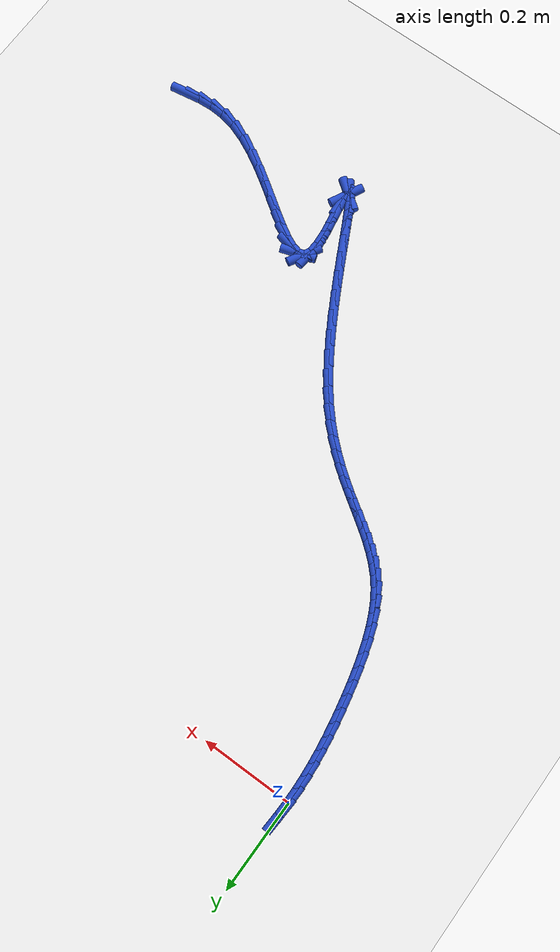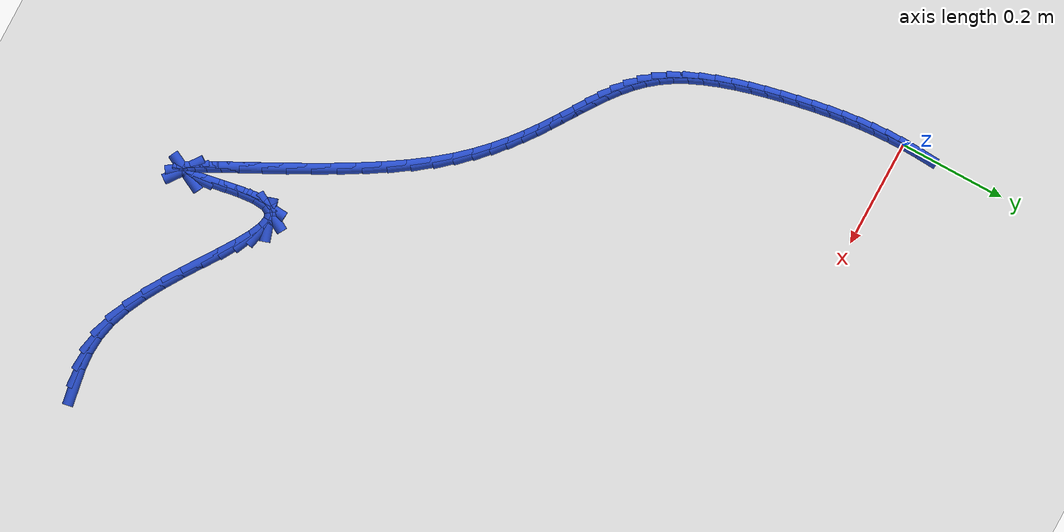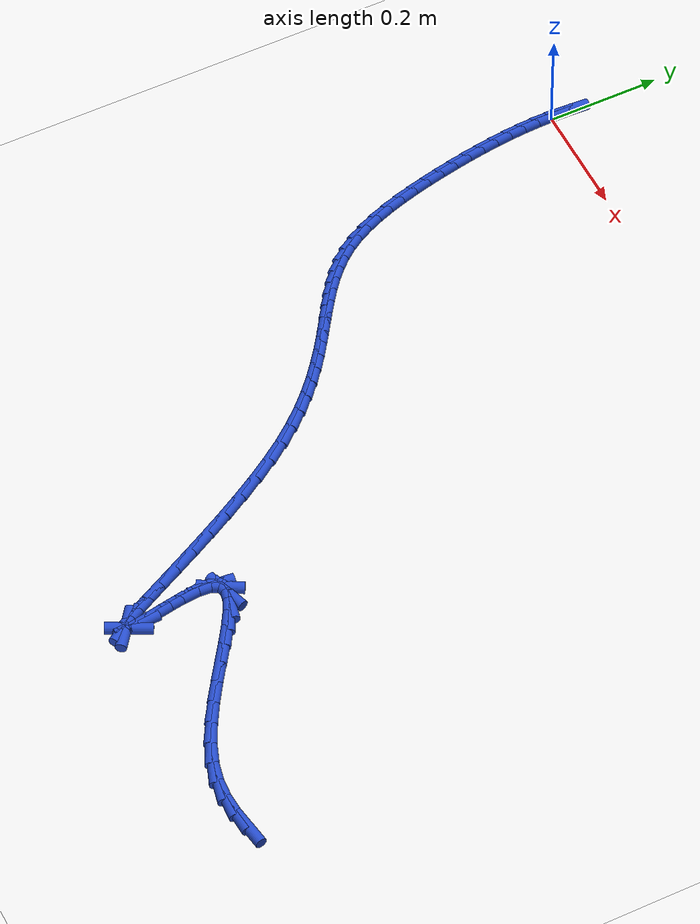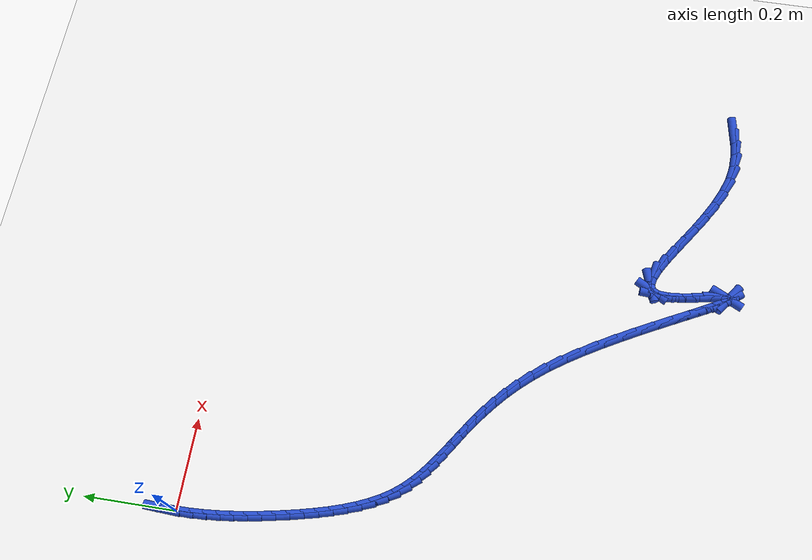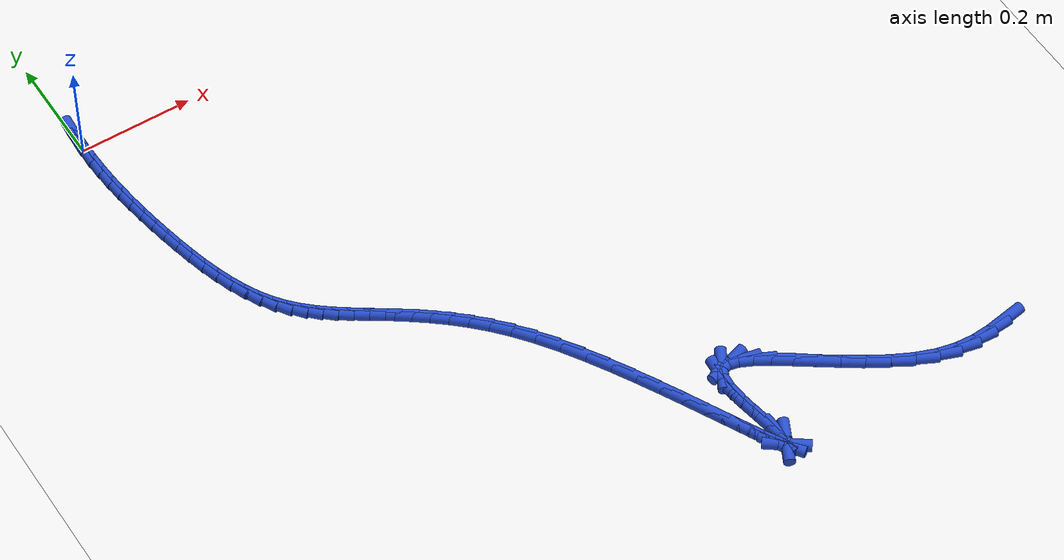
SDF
<sdf version="1.6">
 <world name="default">
  <model name="ground_plane">
   <static>1</static>
   <link name="link">
    <collision name="collision">
     <geometry><plane><normal>0 0 1</normal><size>100 100</size></plane></geometry>
     <surface><friction><ode><mu>100</mu><mu2>50</mu2></ode></friction></surface>
    </collision>
    <visual name="visual">
     <cast_shadows>0</cast_shadows>
     <geometry><plane><normal>0 0 1</normal><size>100 100</size></plane></geometry>
     <material>
      <script><uri>file://media/materials/scripts/gazebo.material</uri><name>Gazebo/WhiteGlow</name></script>
     </material>
    </visual>
   </link>
  </model>
  <model name="line">
   <link name="link_0">
    <pose>-2.6020852139652106e-18 2.7755575615628914e-17 0.01 0 1.57 1.5460825741997606</pose>
    <collision name="collision">
     <geometry><cylinder><radius>0.01</radius><length>0.08</length></cylinder></geometry>
    </collision>
    <visual name="visual">
     <material>
      <script><name>Gazebo/Blue</name><uri>file://media/materials/scripts/gazebo.material</uri></script>
     </material>
     <geometry><cylinder><radius>0.01</radius><length>0.08</length></cylinder></geometry>
    </visual>
   </link>
   <link name="link_1">
    <pose>0.0006957124696851008 0.0281450913307681 0.01 0 1.57 1.5133960565667233</pose>
    <collision name="collision">
     <geometry><cylinder><radius>0.01</radius><length>0.08</length></cylinder></geometry>
    </collision>
    <visual name="visual">
     <material>
      <script><name>Gazebo/Blue</name><uri>file://media/materials/scripts/gazebo.material</uri></script>
     </material>
     <geometry><cylinder><radius>0.01</radius><length>0.08</length></cylinder></geometry>
    </visual>
   </link>
   <link name="link_213">
    <pose>1.079894612910724 -1.1053878803972577 0.01 0 1.57 0.15801777567579595</pose>
    <collision name="collision">
     <geometry><cylinder><radius>0.01</radius><length>0.08</length></cylinder></geometry>
    </collision>
    <visual name="visual">
     <material>
      <script><name>Gazebo/Blue</name><uri>file://media/materials/scripts/gazebo.material</uri></script>
     </material>
     <geometry><cylinder><radius>0.01</radius><length>0.08</length></cylinder></geometry>
    </visual>
   </link>
   <link name="link_214">
    <pose>1.0492796436714982 -1.1102662612585912 0.01 0 1.57 0.059318726436910225</pose>
    <collision name="collision">
     <geometry><cylinder><radius>0.01</radius><length>0.08</length></cylinder></geometry>
    </collision>
    <visual name="visual">
     <material>
      <script><name>Gazebo/Blue</name><uri>file://media/materials/scripts/gazebo.material</uri></script>
     </material>
     <geometry><cylinder><radius>0.01</radius><length>0.08</length></cylinder></geometry>
    </visual>
   </link>
   <link name="link_215">
    <pose>1.0176081334829237 -1.1121471815635164 0.01 0 1.57 -0.06843720812943888</pose>
    <collision name="collision">
     <geometry><cylinder><radius>0.01</radius><length>0.08</length></cylinder></geometry>
    </collision>
    <visual name="visual">
     <material>
      <script><name>Gazebo/Blue</name><uri>file://media/materials/scripts/gazebo.material</uri></script>
     </material>
     <geometry><cylinder><radius>0.01</radius><length>0.08</length></cylinder></geometry>
    </visual>
   </link>
   <link name="link_216">
    <pose>0.984874905575803 -1.1099035068748464 0.01 0 1.57 -0.2179641894495954</pose>
    <collision name="collision">
     <geometry><cylinder><radius>0.01</radius><length>0.08</length></cylinder></geometry>
    </collision>
    <visual name="visual">
     <material>
      <script><name>Gazebo/Blue</name><uri>file://media/materials/scripts/gazebo.material</uri></script>
     </material>
     <geometry><cylinder><radius>0.01</radius><length>0.08</length></cylinder></geometry>
    </visual>
   </link>
   <link name="link_217">
    <pose>0.9510770337005193 -1.1024178602979244 0.01 0 1.57 -0.35888870255582245</pose>
    <collision name="collision">
     <geometry><cylinder><radius>0.01</radius><length>0.08</length></cylinder></geometry>
    </collision>
    <visual name="visual">
     <material>
      <script><name>Gazebo/Blue</name><uri>file://media/materials/scripts/gazebo.material</uri></script>
     </material>
     <geometry><cylinder><radius>0.01</radius><length>0.08</length></cylinder></geometry>
    </visual>
   </link>
   <link name="link_218">
    <pose>0.9164049386092075 -1.0894111565079283 0.01 0 1.57 -0.45971275507214954</pose>
    <collision name="collision">
     <geometry><cylinder><radius>0.01</radius><length>0.08</length></cylinder></geometry>
    </collision>
    <visual name="visual">
     <material>
      <script><name>Gazebo/Blue</name><uri>file://media/materials/scripts/gazebo.material</uri></script>
     </material>
     <geometry><cylinder><radius>0.01</radius><length>0.08</length></cylinder></geometry>
    </visual>
   </link>
   <link name="link_219">
    <pose>0.8813881702583499 -1.072074667364377 0.01 0 1.57 -0.5286660308688501</pose>
    <collision name="collision">
     <geometry><cylinder><radius>0.01</radius><length>0.08</length></cylinder></geometry>
    </collision>
    <visual name="visual">
     <material>
      <script><name>Gazebo/Blue</name><uri>file://media/materials/scripts/gazebo.material</uri></script>
     </material>
     <geometry><cylinder><radius>0.01</radius><length>0.08</length></cylinder></geometry>
    </visual>
   </link>
   <link name="link_220">
    <pose>0.8465906035337126 -1.0517484867855305 0.01 0 1.57 -0.573608270878691</pose>
    <collision name="collision">
     <geometry><cylinder><radius>0.01</radius><length>0.08</length></cylinder></geometry>
    </collision>
    <visual name="visual">
     <material>
      <script><name>Gazebo/Blue</name><uri>file://media/materials/scripts/gazebo.material</uri></script>
     </material>
     <geometry><cylinder><radius>0.01</radius><length>0.08</length></cylinder></geometry>
    </visual>
   </link>
   <link name="link_221">
    <pose>0.8125761133210608 -1.0297727086896473 0.01 0 1.57 -0.5986687736110547</pose>
    <collision name="collision">
     <geometry><cylinder><radius>0.01</radius><length>0.08</length></cylinder></geometry>
    </collision>
    <visual name="visual">
     <material>
      <script><name>Gazebo/Blue</name><uri>file://media/materials/scripts/gazebo.material</uri></script>
     </material>
     <geometry><cylinder><radius>0.01</radius><length>0.08</length></cylinder></geometry>
    </visual>
   </link>
   <link name="link_222">
    <pose>0.7799085745061587 -1.007487426994985 0.01 0 1.57 -0.6046997983111165</pose>
    <collision name="collision">
     <geometry><cylinder><radius>0.01</radius><length>0.08</length></cylinder></geometry>
    </collision>
    <visual name="visual">
     <material>
      <script><name>Gazebo/Blue</name><uri>file://media/materials/scripts/gazebo.material</uri></script>
     </material>
     <geometry><cylinder><radius>0.01</radius><length>0.08</length></cylinder></geometry>
    </visual>
   </link>
   <link name="link_223">
    <pose>0.7491518619747723 -0.9862327356198036 0.01 0 1.57 -0.5887202918890228</pose>
    <collision name="collision">
     <geometry><cylinder><radius>0.01</radius><length>0.08</length></cylinder></geometry>
    </collision>
    <visual name="visual">
     <material>
      <script><name>Gazebo/Blue</name><uri>file://media/materials/scripts/gazebo.material</uri></script>
     </material>
     <geometry><cylinder><radius>0.01</radius><length>0.08</length></cylinder></geometry>
    </visual>
   </link>
   <link name="link_224">
    <pose>0.7208698506126666 -0.9673487284823611 0.01 0 1.57 -0.5412104717310058</pose>
    <collision name="collision">
     <geometry><cylinder><radius>0.01</radius><length>0.08</length></cylinder></geometry>
    </collision>
    <visual name="visual">
     <material>
      <script><name>Gazebo/Blue</name><uri>file://media/materials/scripts/gazebo.material</uri></script>
     </material>
     <geometry><cylinder><radius>0.01</radius><length>0.08</length></cylinder></geometry>
    </visual>
   </link>
   <link name="link_225">
    <pose>0.6956264153056068 -0.9521754995009165 0.01 0 1.57 -0.4375082932504157</pose>
    <collision name="collision">
     <geometry><cylinder><radius>0.01</radius><length>0.08</length></cylinder></geometry>
    </collision>
    <visual name="visual">
     <material>
      <script><name>Gazebo/Blue</name><uri>file://media/materials/scripts/gazebo.material</uri></script>
     </material>
     <geometry><cylinder><radius>0.01</radius><length>0.08</length></cylinder></geometry>
    </visual>
   </link>
   <link name="link_226">
    <pose>0.6739854309393567 -0.942053142593728 0.01 0 1.57 -0.2103721667911133</pose>
    <collision name="collision">
     <geometry><cylinder><radius>0.01</radius><length>0.08</length></cylinder></geometry>
    </collision>
    <visual name="visual">
     <material>
      <script><name>Gazebo/Blue</name><uri>file://media/materials/scripts/gazebo.material</uri></script>
     </material>
     <geometry><cylinder><radius>0.01</radius><length>0.08</length></cylinder></geometry>
    </visual>
   </link>
   <link name="link_227">
    <pose>0.6565107723996838 -0.9383217516790553 0.01 0 1.57 0.3041014958939386</pose>
    <collision name="collision">
     <geometry><cylinder><radius>0.01</radius><length>0.08</length></cylinder></geometry>
    </collision>
    <visual name="visual">
     <material>
      <script><name>Gazebo/Blue</name><uri>file://media/materials/scripts/gazebo.material</uri></script>
     </material>
     <geometry><cylinder><radius>0.01</radius><length>0.08</length></cylinder></geometry>
    </visual>
   </link>
   <link name="link_228">
    <pose>0.643766314572352 -0.9423214206751563 0.01 0 1.57 1.052727035013885</pose>
    <collision name="collision">
     <geometry><cylinder><radius>0.01</radius><length>0.08</length></cylinder></geometry>
    </collision>
    <visual name="visual">
     <material>
      <script><name>Gazebo/Blue</name><uri>file://media/materials/scripts/gazebo.material</uri></script>
     </material>
     <geometry><cylinder><radius>0.01</radius><length>0.08</length></cylinder></geometry>
    </visual>
   </link>
   <link name="link_229">
    <pose>0.6363159323431264 -0.9553922435002898 0.01 0 1.57 1.4914378069226801</pose>
    <collision name="collision">
     <geometry><cylinder><radius>0.01</radius><length>0.08</length></cylinder></geometry>
    </collision>
    <visual name="visual">
     <material>
      <script><name>Gazebo/Blue</name><uri>file://media/materials/scripts/gazebo.material</uri></script>
     </material>
     <geometry><cylinder><radius>0.01</radius><length>0.08</length></cylinder></geometry>
    </visual>
   </link>
   <link name="link_230">
    <pose>0.6344910187462869 -0.9783397609878988 0.01 0 1.57 -1.4866743944260692</pose>
    <collision name="collision">
     <geometry><cylinder><radius>0.01</radius><length>0.08</length></cylinder></geometry>
    </collision>
    <visual name="visual">
     <material>
      <script><name>Gazebo/Blue</name><uri>file://media/materials/scripts/gazebo.material</uri></script>
     </material>
     <geometry><cylinder><radius>0.01</radius><length>0.08</length></cylinder></geometry>
    </visual>
   </link>
   <link name="link_231">
    <pose>0.6370149442492028 -1.0082721353670203 0.01 0 1.57 -1.4204903028495532</pose>
    <collision name="collision">
     <geometry><cylinder><radius>0.01</radius><length>0.08</length></cylinder></geometry>
    </collision>
    <visual name="visual">
     <material>
      <script><name>Gazebo/Blue</name><uri>file://media/materials/scripts/gazebo.material</uri></script>
     </material>
     <geometry><cylinder><radius>0.01</radius><length>0.08</length></cylinder></geometry>
    </visual>
   </link>
   <link name="link_232">
    <pose>0.6419313168231626 -1.0407345288436776 0.01 0 1.57 -1.3973312151779642</pose>
    <collision name="collision">
     <geometry><cylinder><radius>0.01</radius><length>0.08</length></cylinder></geometry>
    </collision>
    <visual name="visual">
     <material>
      <script><name>Gazebo/Blue</name><uri>file://media/materials/scripts/gazebo.material</uri></script>
     </material>
     <geometry><cylinder><radius>0.01</radius><length>0.08</length></cylinder></geometry>
    </visual>
   </link>
   <link name="link_233">
    <pose>0.6472813240390044 -1.0712665383183904 0.01 0 1.57 -1.4136655242943483</pose>
    <collision name="collision">
     <geometry><cylinder><radius>0.01</radius><length>0.08</length></cylinder></geometry>
    </collision>
    <visual name="visual">
     <material>
      <script><name>Gazebo/Blue</name><uri>file://media/materials/scripts/gazebo.material</uri></script>
     </material>
     <geometry><cylinder><radius>0.01</radius><length>0.08</length></cylinder></geometry>
    </visual>
   </link>
   <link name="link_234">
    <pose>0.6511062044414475 -1.0954078876032554 0.01 0 1.57 -1.5177024696669412</pose>
    <collision name="collision">
     <geometry><cylinder><radius>0.01</radius><length>0.08</length></cylinder></geometry>
    </collision>
    <visual name="visual">
     <material>
      <script><name>Gazebo/Blue</name><uri>file://media/materials/scripts/gazebo.material</uri></script>
     </material>
     <geometry><cylinder><radius>0.01</radius><length>0.08</length></cylinder></geometry>
    </visual>
   </link>
   <link name="link_235">
    <pose>0.651868214087115 -1.1097465235197128 0.01 0 1.57 1.100191027530383</pose>
    <collision name="collision">
     <geometry><cylinder><radius>0.01</radius><length>0.08</length></cylinder></geometry>
    </collision>
    <visual name="visual">
     <material>
      <script><name>Gazebo/Blue</name><uri>file://media/materials/scripts/gazebo.material</uri></script>
     </material>
     <geometry><cylinder><radius>0.01</radius><length>0.08</length></cylinder></geometry>
    </visual>
   </link>
   <link name="link_236">
    <pose>0.6494709151159885 -1.114458866426224 0.01 0 1.57 -0.6388882003221777</pose>
    <collision name="collision">
     <geometry><cylinder><radius>0.01</radius><length>0.08</length></cylinder></geometry>
    </collision>
    <visual name="visual">
     <material>
      <script><name>Gazebo/Blue</name><uri>file://media/materials/scripts/gazebo.material</uri></script>
     </material>
     <geometry><cylinder><radius>0.01</radius><length>0.08</length></cylinder></geometry>
    </visual>
   </link>
   <link name="link_237">
    <pose>0.6441260410169101 -1.1104886023876963 0.01 0 1.57 -0.9667336173312969</pose>
    <collision name="collision">
     <geometry><cylinder><radius>0.01</radius><length>0.08</length></cylinder></geometry>
    </collision>
    <visual name="visual">
     <material>
      <script><name>Gazebo/Blue</name><uri>file://media/materials/scripts/gazebo.material</uri></script>
     </material>
     <geometry><cylinder><radius>0.01</radius><length>0.08</length></cylinder></geometry>
    </visual>
   </link>
   <link name="link_238">
    <pose>0.636045325278722 -1.0987794174690368 0.01 0 1.57 -1.0503935223697098</pose>
    <collision name="collision">
     <geometry><cylinder><radius>0.01</radius><length>0.08</length></cylinder></geometry>
    </collision>
    <visual name="visual">
     <material>
      <script><name>Gazebo/Blue</name><uri>file://media/materials/scripts/gazebo.material</uri></script>
     </material>
     <geometry><cylinder><radius>0.01</radius><length>0.08</length></cylinder></geometry>
    </visual>
   </link>
   <link name="link_239">
    <pose>0.625440501390267 -1.0802749977351536 0.01 0 1.57 -1.0831641997561823</pose>
    <collision name="collision">
     <geometry><cylinder><radius>0.01</radius><length>0.08</length></cylinder></geometry>
    </collision>
    <visual name="visual">
     <material>
      <script><name>Gazebo/Blue</name><uri>file://media/materials/scripts/gazebo.material</uri></script>
     </material>
     <geometry><cylinder><radius>0.01</radius><length>0.08</length></cylinder></geometry>
    </visual>
   </link>
   <link name="link_240">
    <pose>0.6125233028403867 -1.0559190292509533 0.01 0 1.57 -1.096654263095963</pose>
    <collision name="collision">
     <geometry><cylinder><radius>0.01</radius><length>0.08</length></cylinder></geometry>
    </collision>
    <visual name="visual">
     <material>
      <script><name>Gazebo/Blue</name><uri>file://media/materials/scripts/gazebo.material</uri></script>
     </material>
     <geometry><cylinder><radius>0.01</radius><length>0.08</length></cylinder></geometry>
    </visual>
   </link>
   <link name="link_241">
    <pose>0.5975054631179237 -1.0266551980813439 0.01 0 1.57 -1.1001254693470905</pose>
    <collision name="collision">
     <geometry><cylinder><radius>0.01</radius><length>0.08</length></cylinder></geometry>
    </collision>
    <visual name="visual">
     <material>
      <script><name>Gazebo/Blue</name><uri>file://media/materials/scripts/gazebo.material</uri></script>
     </material>
     <geometry><cylinder><radius>0.01</radius><length>0.08</length></cylinder></geometry>
    </visual>
   </link>
   <link name="link_242">
    <pose>0.5805987157117202 -0.9934271902912317 0.01 0 1.57 -1.0970553452881677</pose>
    <collision name="collision">
     <geometry><cylinder><radius>0.01</radius><length>0.08</length></cylinder></geometry>
    </collision>
    <visual name="visual">
     <material>
      <script><name>Gazebo/Blue</name><uri>file://media/materials/scripts/gazebo.material</uri></script>
     </material>
     <geometry><cylinder><radius>0.01</radius><length>0.08</length></cylinder></geometry>
    </visual>
   </link>
   <link name="link_243">
    <pose>0.5620147941106175 -0.9571786919455235 0.01 0 1.57 -1.0888113487741926</pose>
    <collision name="collision">
     <geometry><cylinder><radius>0.01</radius><length>0.08</length></cylinder></geometry>
    </collision>
    <visual name="visual">
     <material>
      <script><name>Gazebo/Blue</name><uri>file://media/materials/scripts/gazebo.material</uri></script>
     </material>
     <geometry><cylinder><radius>0.01</radius><length>0.08</length></cylinder></geometry>
    </visual>
   </link>
   <link name="link_244">
    <pose>0.5419654318034594 -0.9188533891091292 0.01 0 1.57 -1.0757509317434792</pose>
    <collision name="collision">
     <geometry><cylinder><radius>0.01</radius><length>0.08</length></cylinder></geometry>
    </collision>
    <visual name="visual">
     <material>
      <script><name>Gazebo/Blue</name><uri>file://media/materials/scripts/gazebo.material</uri></script>
     </material>
     <geometry><cylinder><radius>0.01</radius><length>0.08</length></cylinder></geometry>
    </visual>
   </link>
   <link name="link_245">
    <pose>0.5206623622790875 -0.8793949678469544 0.01 0 1.57 -1.0575809739749444</pose>
    <collision name="collision">
     <geometry><cylinder><radius>0.01</radius><length>0.08</length></cylinder></geometry>
    </collision>
    <visual name="visual">
     <material>
      <script><name>Gazebo/Blue</name><uri>file://media/materials/scripts/gazebo.material</uri></script>
     </material>
     <geometry><cylinder><radius>0.01</radius><length>0.08</length></cylinder></geometry>
    </visual>
   </link>
   <link name="link_246">
    <pose>0.49831731902634385 -0.8397471142239067 0.01 0 1.57 -1.0334237907098878</pose>
    <collision name="collision">
     <geometry><cylinder><radius>0.01</radius><length>0.08</length></cylinder></geometry>
    </collision>
    <visual name="visual">
     <material>
      <script><name>Gazebo/Blue</name><uri>file://media/materials/scripts/gazebo.material</uri></script>
     </material>
     <geometry><cylinder><radius>0.01</radius><length>0.08</length></cylinder></geometry>
    </visual>
   </link>
   <link name="link_247">
    <pose>0.47514203553407086 -0.8008535143048933 0.01 0 1.57 -1.0017012098854499</pose>
    <collision name="collision">
     <geometry><cylinder><radius>0.01</radius><length>0.08</length></cylinder></geometry>
    </collision>
    <visual name="visual">
     <material>
      <script><name>Gazebo/Blue</name><uri>file://media/materials/scripts/gazebo.material</uri></script>
     </material>
     <geometry><cylinder><radius>0.01</radius><length>0.08</length></cylinder></geometry>
    </visual>
   </link>
   <link name="link_248">
    <pose>0.4513482452911108 -0.7636578541548219 0.01 0 1.57 -0.9598229670370301</pose>
    <collision name="collision">
     <geometry><cylinder><radius>0.01</radius><length>0.08</length></cylinder></geometry>
    </collision>
    <visual name="visual">
     <material>
      <script><name>Gazebo/Blue</name><uri>file://media/materials/scripts/gazebo.material</uri></script>
     </material>
     <geometry><cylinder><radius>0.01</radius><length>0.08</length></cylinder></geometry>
    </visual>
   </link>
   <link name="link_249">
    <pose>0.4271476817863057 -0.7291038198385992 0.01 0 1.57 -0.9052307644181323</pose>
    <collision name="collision">
     <geometry><cylinder><radius>0.01</radius><length>0.08</length></cylinder></geometry>
    </collision>
    <visual name="visual">
     <material>
      <script><name>Gazebo/Blue</name><uri>file://media/materials/scripts/gazebo.material</uri></script>
     </material>
     <geometry><cylinder><radius>0.01</radius><length>0.08</length></cylinder></geometry>
    </visual>
   </link>
   <link name="link_250">
    <pose>0.40274317164918105 -0.6980177116640726 0.01 0 1.57 -0.8462158733695088</pose>
    <collision name="collision">
     <geometry><cylinder><radius>0.01</radius><length>0.08</length></cylinder></geometry>
    </collision>
    <visual name="visual">
     <material>
      <script><name>Gazebo/Blue</name><uri>file://media/materials/scripts/gazebo.material</uri></script>
     </material>
     <geometry><cylinder><radius>0.01</radius><length>0.08</length></cylinder></geometry>
    </visual>
   </link>
   <link name="link_251">
    <pose>0.37827291452684364 -0.6703740945531818 0.01 0 1.57 -0.7889858731430566</pose>
    <collision name="collision">
     <geometry><cylinder><radius>0.01</radius><length>0.08</length></cylinder></geometry>
    </collision>
    <visual name="visual">
     <material>
      <script><name>Gazebo/Blue</name><uri>file://media/materials/scripts/gazebo.material</uri></script>
     </material>
     <geometry><cylinder><radius>0.01</radius><length>0.08</length></cylinder></geometry>
    </visual>
   </link>
   <link name="link_252">
    <pose>0.35384660715591704 -0.6457718863443844 0.01 0 1.57 -0.7354949190572968</pose>
    <collision name="collision">
     <geometry><cylinder><radius>0.01</radius><length>0.08</length></cylinder></geometry>
    </collision>
    <visual name="visual">
     <material>
      <script><name>Gazebo/Blue</name><uri>file://media/materials/scripts/gazebo.material</uri></script>
     </material>
     <geometry><cylinder><radius>0.01</radius><length>0.08</length></cylinder></geometry>
    </visual>
   </link>
   <link name="link_253">
    <pose>0.32957382145656566 -0.6238083598883534 0.01 0 1.57 -0.6878036651543685</pose>
    <collision name="collision">
     <geometry><cylinder><radius>0.01</radius><length>0.08</length></cylinder></geometry>
    </collision>
    <visual name="visual">
     <material>
      <script><name>Gazebo/Blue</name><uri>file://media/materials/scripts/gazebo.material</uri></script>
     </material>
     <geometry><cylinder><radius>0.01</radius><length>0.08</length></cylinder></geometry>
    </visual>
   </link>
   <link name="link_254">
    <pose>0.3055641293489519 -0.6040807880357593 0.01 0 1.57 -0.6479960706565456</pose>
    <collision name="collision">
     <geometry><cylinder><radius>0.01</radius><length>0.08</length></cylinder></geometry>
    </collision>
    <visual name="visual">
     <material>
      <script><name>Gazebo/Blue</name><uri>file://media/materials/scripts/gazebo.material</uri></script>
     </material>
     <geometry><cylinder><radius>0.01</radius><length>0.08</length></cylinder></geometry>
    </visual>
   </link>
   <link name="link_255">
    <pose>0.2819271027532386 -0.5861864436372735 0.01 0 1.57 -0.6180930603411956</pose>
    <collision name="collision">
     <geometry><cylinder><radius>0.01</radius><length>0.08</length></cylinder></geometry>
    </collision>
    <visual name="visual">
     <material>
      <script><name>Gazebo/Blue</name><uri>file://media/materials/scripts/gazebo.material</uri></script>
     </material>
     <geometry><cylinder><radius>0.01</radius><length>0.08</length></cylinder></geometry>
    </visual>
   </link>
   <link name="link_256">
    <pose>0.25877231358958896 -0.5697225995435676 0.01 0 1.57 -0.59999716041492</pose>
    <collision name="collision">
     <geometry><cylinder><radius>0.01</radius><length>0.08</length></cylinder></geometry>
    </collision>
    <visual name="visual">
     <material>
      <script><name>Gazebo/Blue</name><uri>file://media/materials/scripts/gazebo.material</uri></script>
     </material>
     <geometry><cylinder><radius>0.01</radius><length>0.08</length></cylinder></geometry>
    </visual>
   </link>
   <link name="link_257">
    <pose>0.23620933377816586 -0.5542865286053131 0.01 0 1.57 -0.5954586279553898</pose>
    <collision name="collision">
     <geometry><cylinder><radius>0.01</radius><length>0.08</length></cylinder></geometry>
    </collision>
    <visual name="visual">
     <material>
      <script><name>Gazebo/Blue</name><uri>file://media/materials/scripts/gazebo.material</uri></script>
     </material>
     <geometry><cylinder><radius>0.01</radius><length>0.08</length></cylinder></geometry>
    </visual>
   </link>
   <link name="link_258">
    <pose>0.21434773523913225 -0.5394755036731814 0.01 0 1.57 -0.6060320510809545</pose>
    <collision name="collision">
     <geometry><cylinder><radius>0.01</radius><length>0.08</length></cylinder></geometry>
    </collision>
    <visual name="visual">
     <material>
      <script><name>Gazebo/Blue</name><uri>file://media/materials/scripts/gazebo.material</uri></script>
     </material>
     <geometry><cylinder><radius>0.01</radius><length>0.08</length></cylinder></geometry>
    </visual>
   </link>
   <link name="link_259">
    <pose>0.19329708989265126 -0.524886797597844 0.01 0 1.57 -0.6329757734337448</pose>
    <collision name="collision">
     <geometry><cylinder><radius>0.01</radius><length>0.08</length></cylinder></geometry>
    </collision>
    <visual name="visual">
     <material>
      <script><name>Gazebo/Blue</name><uri>file://media/materials/scripts/gazebo.material</uri></script>
     </material>
     <geometry><cylinder><radius>0.01</radius><length>0.08</length></cylinder></geometry>
    </visual>
   </link>
   <link name="link_260">
    <pose>0.1731669696588858 -0.5101176832299722 0.01 0 1.57 -0.6770426288195953</pose>
    <collision name="collision">
     <geometry><cylinder><radius>0.01</radius><length>0.08</length></cylinder></geometry>
    </collision>
    <visual name="visual">
     <material>
      <script><name>Gazebo/Blue</name><uri>file://media/materials/scripts/gazebo.material</uri></script>
     </material>
     <geometry><cylinder><radius>0.01</radius><length>0.08</length></cylinder></geometry>
    </visual>
   </link>
   <link name="link_261">
    <pose>0.15406694645799837 -0.49476543342023704 0.01 0 1.57 -0.7381355907307389</pose>
    <collision name="collision">
     <geometry><cylinder><radius>0.01</radius><length>0.08</length></cylinder></geometry>
    </collision>
    <visual name="visual">
     <material>
      <script><name>Gazebo/Blue</name><uri>file://media/materials/scripts/gazebo.material</uri></script>
     </material>
     <geometry><cylinder><radius>0.01</radius><length>0.08</length></cylinder></geometry>
    </visual>
   </link>
   <link name="link_262">
    <pose>0.13610659221015306 -0.47842732101931096 0.01 0 1.57 -0.8148801293483049</pose>
    <collision name="collision">
     <geometry><cylinder><radius>0.01</radius><length>0.08</length></cylinder></geometry>
    </collision>
    <visual name="visual">
     <material>
      <script><name>Gazebo/Blue</name><uri>file://media/materials/scripts/gazebo.material</uri></script>
     </material>
     <geometry><cylinder><radius>0.01</radius><length>0.08</length></cylinder></geometry>
    </visual>
   </link>
   <link name="link_263">
    <pose>0.11939547883551231 -0.460700618877865 0.01 0 1.57 -0.9042978331872351</pose>
    <collision name="collision">
     <geometry><cylinder><radius>0.01</radius><length>0.08</length></cylinder></geometry>
    </collision>
    <visual name="visual">
     <material>
      <script><name>Gazebo/Blue</name><uri>file://media/materials/scripts/gazebo.material</uri></script>
     </material>
     <geometry><cylinder><radius>0.01</radius><length>0.08</length></cylinder></geometry>
    </visual>
   </link>
   <link name="link_264">
    <pose>0.10404317825423916 -0.4411825998465705 0.01 0 1.57 -1.0008072156008938</pose>
    <collision name="collision">
     <geometry><cylinder><radius>0.01</radius><length>0.08</length></cylinder></geometry>
    </collision>
    <visual name="visual">
     <material>
      <script><name>Gazebo/Blue</name><uri>file://media/materials/scripts/gazebo.material</uri></script>
     </material>
     <geometry><cylinder><radius>0.01</radius><length>0.08</length></cylinder></geometry>
    </visual>
   </link>
   <link name="link_265">
    <pose>0.09014867188298298 -0.41950471977669335 0.01 0 1.57 -1.0880012386092435</pose>
    <collision name="collision">
     <geometry><cylinder><radius>0.01</radius><length>0.08</length></cylinder></geometry>
    </collision>
    <visual name="visual">
     <material>
      <script><name>Gazebo/Blue</name><uri>file://media/materials/scripts/gazebo.material</uri></script>
     </material>
     <geometry><cylinder><radius>0.01</radius><length>0.08</length></cylinder></geometry>
    </visual>
   </link>
   <link name="link_266">
    <pose>0.07768075386589948 -0.39571864037726046 0.01 0 1.57 -1.1591284139246394</pose>
    <collision name="collision">
     <geometry><cylinder><radius>0.01</radius><length>0.08</length></cylinder></geometry>
    </collision>
    <visual name="visual">
     <material>
      <script><name>Gazebo/Blue</name><uri>file://media/materials/scripts/gazebo.material</uri></script>
     </material>
     <geometry><cylinder><radius>0.01</radius><length>0.08</length></cylinder></geometry>
    </visual>
   </link>
   <link name="link_267">
    <pose>0.06652074144628888 -0.3701583728178416 0.01 0 1.57 -1.216931773277167</pose>
    <collision name="collision">
     <geometry><cylinder><radius>0.01</radius><length>0.08</length></cylinder></geometry>
    </collision>
    <visual name="visual">
     <material>
      <script><name>Gazebo/Blue</name><uri>file://media/materials/scripts/gazebo.material</uri></script>
     </material>
     <geometry><cylinder><radius>0.01</radius><length>0.08</length></cylinder></geometry>
    </visual>
   </link>
   <link name="link_268">
    <pose>0.05654832903056608 -0.34316316630358656 0.01 0 1.57 -1.2638072524404986</pose>
    <collision name="collision">
     <geometry><cylinder><radius>0.01</radius><length>0.08</length></cylinder></geometry>
    </collision>
    <visual name="visual">
     <material>
      <script><name>Gazebo/Blue</name><uri>file://media/materials/scripts/gazebo.material</uri></script>
     </material>
     <geometry><cylinder><radius>0.01</radius><length>0.08</length></cylinder></geometry>
    </visual>
   </link>
   <link name="link_269">
    <pose>0.047643211025146 -0.3150722700396459 0.01 0 1.57 -1.3016210005183648</pose>
    <collision name="collision">
     <geometry><cylinder><radius>0.01</radius><length>0.08</length></cylinder></geometry>
    </collision>
    <visual name="visual">
     <material>
      <script><name>Gazebo/Blue</name><uri>file://media/materials/scripts/gazebo.material</uri></script>
     </material>
     <geometry><cylinder><radius>0.01</radius><length>0.08</length></cylinder></geometry>
    </visual>
   </link>
   <link name="link_270">
    <pose>0.03968508183644327 -0.2862249332311685 0.01 0 1.57 -1.3317661152197073</pose>
    <collision name="collision">
     <geometry><cylinder><radius>0.01</radius><length>0.08</length></cylinder></geometry>
    </collision>
    <visual name="visual">
     <material>
      <script><name>Gazebo/Blue</name><uri>file://media/materials/scripts/gazebo.material</uri></script>
     </material>
     <geometry><cylinder><radius>0.01</radius><length>0.08</length></cylinder></geometry>
    </visual>
   </link>
   <link name="link_271">
    <pose>0.032553635870873295 -0.2569604050833064 0.01 0 1.57 -1.3552303868439939</pose>
    <collision name="collision">
     <geometry><cylinder><radius>0.01</radius><length>0.08</length></cylinder></geometry>
    </collision>
    <visual name="visual">
     <material>
      <script><name>Gazebo/Blue</name><uri>file://media/materials/scripts/gazebo.material</uri></script>
     </material>
     <geometry><cylinder><radius>0.01</radius><length>0.08</length></cylinder></geometry>
    </visual>
   </link>
   <link name="link_272">
    <pose>0.0261285675348507 -0.22761793480120893 0.01 0 1.57 -1.3734417426315604</pose>
    <collision name="collision">
     <geometry><cylinder><radius>0.01</radius><length>0.08</length></cylinder></geometry>
    </collision>
    <visual name="visual">
     <material>
      <script><name>Gazebo/Blue</name><uri>file://media/materials/scripts/gazebo.material</uri></script>
     </material>
     <geometry><cylinder><radius>0.01</radius><length>0.08</length></cylinder></geometry>
    </visual>
   </link>
   <link name="link_273">
    <pose>0.02030634407745783 -0.1985006134334708 0.01 0 1.57 -1.3920874937402088</pose>
    <collision name="collision">
     <geometry><cylinder><radius>0.01</radius><length>0.08</length></cylinder></geometry>
    </collision>
    <visual name="visual">
     <material>
      <script><name>Gazebo/Blue</name><uri>file://media/materials/scripts/gazebo.material</uri></script>
     </material>
     <geometry><cylinder><radius>0.01</radius><length>0.08</length></cylinder></geometry>
    </visual>
   </link>
   <link name="link_274">
    <pose>0.015097651475609764 -0.1696653043185488 0.01 0 1.57 -1.4134706993537076</pose>
    <collision name="collision">
     <geometry><cylinder><radius>0.01</radius><length>0.08</length></cylinder></geometry>
    </collision>
    <visual name="visual">
     <material>
      <script><name>Gazebo/Blue</name><uri>file://media/materials/scripts/gazebo.material</uri></script>
     </material>
     <geometry><cylinder><radius>0.01</radius><length>0.08</length></cylinder></geometry>
    </visual>
   </link>
   <link name="link_275">
    <pose>0.010560790353086043 -0.14106622523327444 0.01 0 1.57 -1.4375978140018897</pose>
    <collision name="collision">
     <geometry><cylinder><radius>0.01</radius><length>0.08</length></cylinder></geometry>
    </collision>
    <visual name="visual">
     <material>
      <script><name>Gazebo/Blue</name><uri>file://media/materials/scripts/gazebo.material</uri></script>
     </material>
     <geometry><cylinder><radius>0.01</radius><length>0.08</length></cylinder></geometry>
    </visual>
   </link>
   <link name="link_276">
    <pose>0.006754219083305737 -0.11265725388474453 0.01 0 1.57 -1.4644303261418952</pose>
    <collision name="collision">
     <geometry><cylinder><radius>0.01</radius><length>0.08</length></cylinder></geometry>
    </collision>
    <visual name="visual">
     <material>
      <script><name>Gazebo/Blue</name><uri>file://media/materials/scripts/gazebo.material</uri></script>
     </material>
     <geometry><cylinder><radius>0.01</radius><length>0.08</length></cylinder></geometry>
    </visual>
   </link>
   <link name="link_277">
    <pose>0.0037363960396879104 -0.08439226798005561 0.01 0 1.57 -1.4938862735698961</pose>
    <collision name="collision">
     <geometry><cylinder><radius>0.01</radius><length>0.08</length></cylinder></geometry>
    </collision>
    <visual name="visual">
     <material>
      <script><name>Gazebo/Blue</name><uri>file://media/materials/scripts/gazebo.material</uri></script>
     </material>
     <geometry><cylinder><radius>0.01</radius><length>0.08</length></cylinder></geometry>
    </visual>
   </link>
   <link name="link_278">
    <pose>0.0015657795956516326 -0.05622514522630424 0.01 0 1.57 -1.5258352093010827</pose>
    <collision name="collision">
     <geometry><cylinder><radius>0.01</radius><length>0.08</length></cylinder></geometry>
    </collision>
    <visual name="visual">
     <material>
      <script><name>Gazebo/Blue</name><uri>file://media/materials/scripts/gazebo.material</uri></script>
     </material>
     <geometry><cylinder><radius>0.01</radius><length>0.08</length></cylinder></geometry>
    </visual>
   </link>
   <link name="link_279">
    <pose>0.00030082812461594555 -0.0281097633305862 0.01 0 1.57 -1.5600948264952756</pose>
    <collision name="collision">
     <geometry><cylinder><radius>0.01</radius><length>0.08</length></cylinder></geometry>
    </collision>
    <visual name="visual">
     <material>
      <script><name>Gazebo/Blue</name><uri>file://media/materials/scripts/gazebo.material</uri></script>
     </material>
     <geometry><cylinder><radius>0.01</radius><length>0.08</length></cylinder></geometry>
    </visual>
   </link>
   <link name="link_280">
    <pose>-1.734723475976807e-18 1.5265566588595902e-16 0.01 0 1.57 1.5451626266976983</pose>
    <collision name="collision">
     <geometry><cylinder><radius>0.01</radius><length>0.08</length></cylinder></geometry>
    </collision>
    <visual name="visual">
     <material>
      <script><name>Gazebo/Blue</name><uri>file://media/materials/scripts/gazebo.material</uri></script>
     </material>
     <geometry><cylinder><radius>0.01</radius><length>0.08</length></cylinder></geometry>
    </visual>
   </link>
  </model>
 </world>
</sdf>
